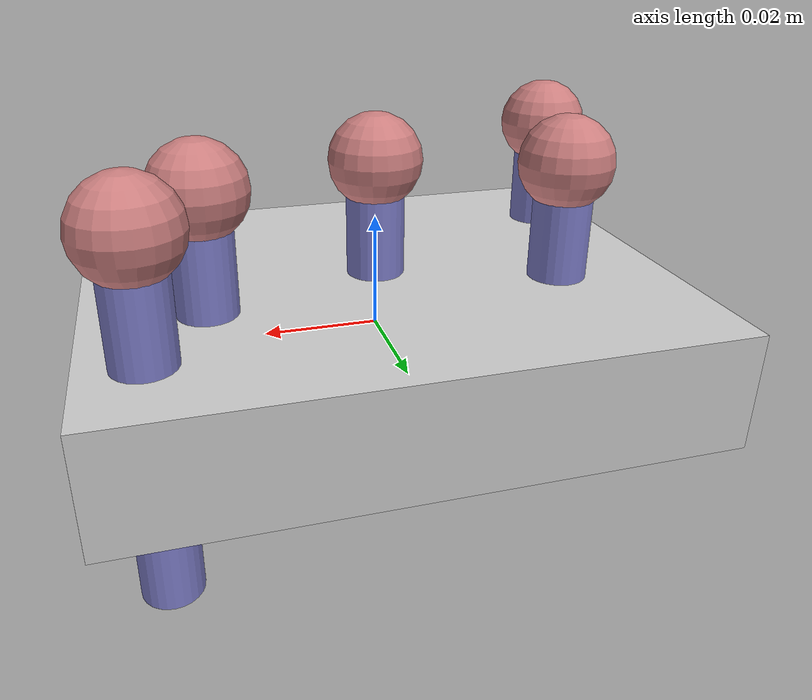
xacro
<!-- Inspire Hand灵巧手URDF模型 -->
<robot name="inspire_hand" xmlns:xacro="http://www.ros.org/wiki/xacro">

    <!-- 手掌 -->
    <link name="palm">
        <inertial>
            <origin xyz="0 0 0" rpy="0 0 0"/>
            <mass value="0.1"/>
            <inertia ixx="0.001" ixy="0" ixz="0" iyy="0.001" iyz="0" izz="0.001"/>
        </inertial>
        <visual>
            <geometry>
                <box size="0.1 0.08 0.02"/>
            </geometry>
            <material name="palm_color">
                <color rgba="0.8 0.8 0.8 1"/>
            </material>
        </visual>
    </link>

    <!-- 五指关节 -->
    <xacro:macro name="finger" params="name id origin_xyz origin_rpy">
        <!-- 基关节 -->
        <link name="${name}_base">
            <visual>
                <geometry>
                    <cylinder radius="0.005" length="0.06"/>
                </geometry>
                <material name="finger_color">
                    <color rgba="0.5 0.5 0.8 1"/>
                </material>
            </visual>
        </link>

        <joint name="${name}_base_joint" type="revolute">
            <axis xyz="0 1 0"/>
            <limit lower="0.0" upper="1.57" effort="50" velocity="10"/>
            <parent link="palm"/>
            <child link="${name}_base"/>
            <origin xyz="${origin_xyz}" rpy="${origin_rpy}"/>
        </joint>

        <!-- 指尖 -->
        <link name="${name}_tip">
            <visual>
                <geometry>
                    <sphere radius="0.008"/>
                </geometry>
                <material name="finger_tip_color">
                    <color rgba="0.8 0.5 0.5 1"/>
                </material>
            </visual>
        </link>

        <joint name="${name}_tip_joint" type="revolute">
            <axis xyz="0 1 0"/>
            <limit lower="0.0" upper="1.57" effort="50" velocity="10"/>
            <parent link="${name}_base"/>
            <child link="${name}_tip"/>
            <origin xyz="0 0 0.03" rpy="0 0 0"/>
        </joint>

        <!-- 关节状态发布器 -->
        <transmission name="${name}_base_trans">
            <type>transmission_interface/SimpleTransmission</type>
            <joint name="${name}_base_joint"/>
            <actuator name="${name}_base_motor">
                <hardwareInterface>hardware_interface/EffortJointInterface</hardwareInterface>
                <mechanicalReduction>1</mechanicalReduction>
            </actuator>
        </transmission>

        <transmission name="${name}_tip_trans">
            <type>transmission_interface/SimpleTransmission</type>
            <joint name="${name}_tip_joint"/>
            <actuator name="${name}_tip_motor">
                <hardwareInterface>hardware_interface/EffortJointInterface</hardwareInterface>
                <mechanicalReduction>1</mechanicalReduction>
            </actuator>
        </transmission>
    </xacro:macro>

    <!-- 创建五根手指 -->
    <xacro:finger name="little" id="0" origin_xyz="0.04 0.025 0" origin_rpy="0 0 -0.5"/>
    <xacro:finger name="ring" id="1" origin_xyz="0.03 0.01 0" origin_rpy="0 0 -0.25"/>
    <xacro:finger name="middle" id="2" origin_xyz="0.0 0.0 0" origin_rpy="0 0 0"/>
    <xacro:finger name="fore" id="3" origin_xyz="-0.03 0.01 0" origin_rpy="0 0 0.25"/>
    <xacro:finger name="thumb" id="4" origin_xyz="-0.04 -0.02 0" origin_rpy="0 0 0.5"/>
</robot>
